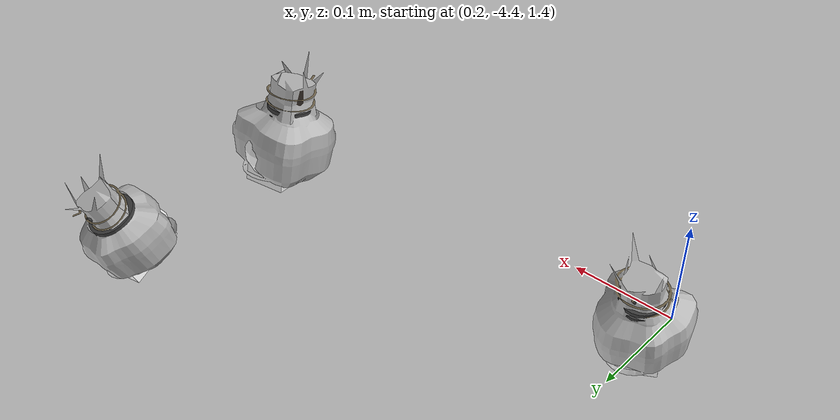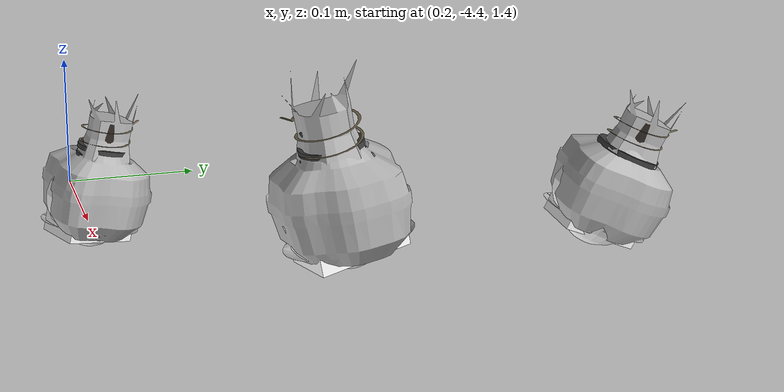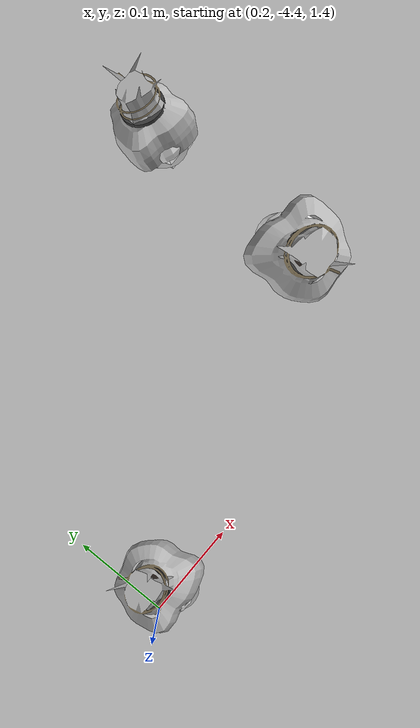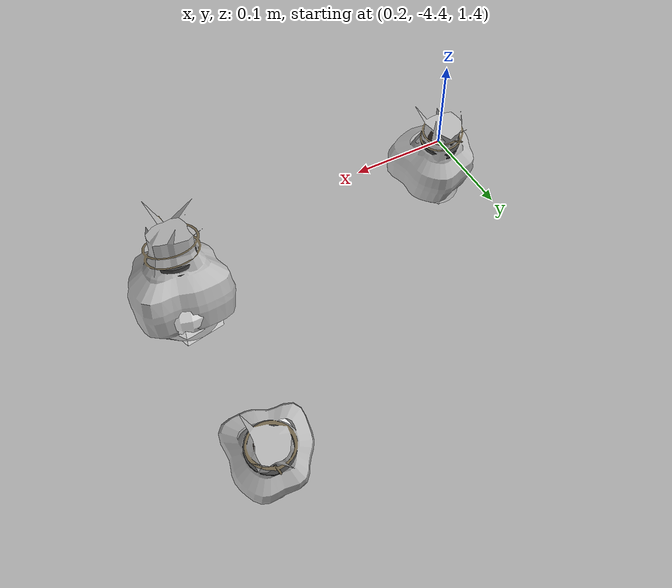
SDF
<sdf version="1.11">
 <world name="peach_orchard">
  <model name="ground">
   <static>true</static>
   <link name="link">
    <visual name="soil">
     <geometry><plane><normal>0 0 1</normal><size>32 22</size></plane></geometry>
     <material>
      <ambient>1 1 1 1</ambient>
      <diffuse>1 1 1 1</diffuse>
      <specular>0.1 0.1 0.1 1</specular>
      <pbr>
       <metal>
        <albedo_map>textures/soil_albedo.png</albedo_map>
        <normal_map type="tangent">textures/soil_normal.png</normal_map>
        <roughness>0.95</roughness>
        <metalness>0</metalness>
       </metal>
      </pbr>
     </material>
    </visual>
    <collision name="c_soil">
     <geometry><plane><normal>0 0 1</normal><size>32 22</size></plane></geometry>
    </collision>
   </link>
  </model>
  <model name="peach_tree_r2_t1_01">
   <pose>0.55 -4.27205 1.45 0 0.185429 -1.70001</pose>
   <static>true</static>
   <link name="bag">
    <visual name="bag_mesh">
     <pose>0 0 0.0479889 0 0 -0</pose>
     <geometry>
      <mesh><uri>model://peach_sim/meshes/bagged_peach.glb</uri><scale>1.06266 1.27754 1.09066</scale></mesh>
     </geometry>
    </visual>
    <visual name="body">
     <pose>0 0 0.0299889 0 0 0</pose>
     <geometry><ellipsoid><radii>0.0398499 0.033216 0.032388</radii></ellipsoid></geometry>
     <material>
      <ambient>1 1 1 1</ambient>
      <diffuse>1 1 1 1</diffuse>
      <specular>0.1 0.1 0.1 1</specular>
      <pbr>
       <metal>
        <albedo_map>textures/paper_bag_albedo.png</albedo_map>
        <normal_map type="tangent">textures/paper_bag_normal.png</normal_map>
        <roughness>0.72</roughness>
        <metalness>0</metalness>
       </metal>
      </pbr>
     </material>
    </visual>
    <visual name="bottom_fold">
     <pose>0 0 0.012 0 0 0.35</pose>
     <geometry><box><size>0.0617673 0.0381984 0.022</size></box></geometry>
     <material>
      <ambient>1 1 1 1</ambient>
      <diffuse>1 1 1 1</diffuse>
      <specular>0.1 0.1 0.1 1</specular>
      <pbr>
       <metal>
        <albedo_map>textures/paper_bag_albedo.png</albedo_map>
        <normal_map type="tangent">textures/paper_bag_normal.png</normal_map>
        <roughness>0.8</roughness>
        <metalness>0</metalness>
       </metal>
      </pbr>
     </material>
    </visual>
    <visual name="fruit">
     <pose>0 0 0.0214186 0 0 0</pose>
     <geometry><sphere><radius>0.0285153</radius></sphere></geometry>
     <material>
      <ambient>1 1 1 1</ambient>
      <diffuse>1 1 1 1</diffuse>
      <specular>0.1 0.1 0.1 1</specular>
      <pbr>
       <metal>
        <albedo_map>textures/fruit_skin_albedo.png</albedo_map>
        <normal_map type="tangent">textures/fruit_skin_normal.png</normal_map>
        <roughness>0.55</roughness>
        <metalness>0</metalness>
       </metal>
      </pbr>
     </material>
    </visual>
    <visual name="neck">
     <pose>0 0 0.0689778 0 0 0</pose>
     <geometry><cylinder><radius>0.013</radius><length>0.018</length></cylinder></geometry>
     <material>
      <ambient>1 1 1 1</ambient>
      <diffuse>1 1 1 1</diffuse>
      <specular>0.1 0.1 0.1 1</specular>
      <pbr>
       <metal>
        <albedo_map>textures/paper_bag_albedo.png</albedo_map>
        <normal_map type="tangent">textures/paper_bag_normal.png</normal_map>
        <roughness>0.75</roughness>
        <metalness>0</metalness>
       </metal>
      </pbr>
     </material>
    </visual>
    <visual name="gather">
     <pose>0 0 0.0499778 0 0 0</pose>
     <geometry><cylinder><radius>0.019</radius><length>0.02</length></cylinder></geometry>
     <material>
      <ambient>1 1 1 1</ambient>
      <diffuse>1 1 1 1</diffuse>
      <specular>0.1 0.1 0.1 1</specular>
      <pbr>
       <metal>
        <albedo_map>textures/paper_bag_albedo.png</albedo_map>
        <normal_map type="tangent">textures/paper_bag_normal.png</normal_map>
        <roughness>0.8</roughness>
        <metalness>0</metalness>
       </metal>
      </pbr>
     </material>
    </visual>
    <visual name="inner_paper">
     <pose>0 0 0.0739778 0 0 0</pose>
     <geometry><cylinder><radius>0.01</radius><length>0.008</length></cylinder></geometry>
     <material>
      <ambient>0.180392 0.14902 0.133333 1</ambient>
      <diffuse>0.180392 0.14902 0.133333 1</diffuse>
      <specular>0.1 0.1 0.1 1</specular>
     </material>
    </visual>
    <visual name="wire_0">
     <pose>0 0 0.0639778 0 0 0</pose>
     <geometry><cylinder><radius>0.0205</radius><length>0.0035</length></cylinder></geometry>
     <material>
      <ambient>0.25 0.25 0.25 1</ambient>
      <diffuse>0.25 0.25 0.25 1</diffuse>
      <specular>0.1 0.1 0.1 1</specular>
     </material>
    </visual>
    <visual name="wire_1">
     <pose>0 0 0.0709778 0 0 0</pose>
     <geometry><cylinder><radius>0.0205</radius><length>0.0035</length></cylinder></geometry>
     <material>
      <ambient>0.25 0.25 0.25 1</ambient>
      <diffuse>0.25 0.25 0.25 1</diffuse>
      <specular>0.1 0.1 0.1 1</specular>
     </material>
    </visual>
    <visual name="wire_tail">
     <pose>0.01 0 0.0719778 0 0.521618 0</pose>
     <geometry><cylinder><radius>0.0012</radius><length>0.026</length></cylinder></geometry>
     <material>
      <ambient>0.25 0.25 0.25 1</ambient>
      <diffuse>0.25 0.25 0.25 1</diffuse>
      <specular>0.1 0.1 0.1 1</specular>
     </material>
    </visual>
    <collision name="c_body">
     <pose>0 0 0.0299889 0 0 0</pose>
     <geometry><cylinder><radius>0.0398499</radius><length>0.0599778</length></cylinder></geometry>
    </collision>
   </link>
  </model>
  <model name="peach_tree_r2_t1_02">
   <pose>0.55 -4.1151 1.45 0 0.426502 1.31658</pose>
   <static>true</static>
   <link name="bag">
    <visual name="bag_mesh">
     <pose>0 0 0.0409548 0 0 0</pose>
     <geometry>
      <mesh><uri>model://peach_sim/meshes/bagged_peach.glb</uri><scale>0.914948 1.02864 0.930791</scale></mesh>
     </geometry>
    </visual>
    <visual name="body">
     <pose>0 0 0.0229548 0 0 0</pose>
     <geometry><ellipsoid><radii>0.0343106 0.0267447 0.0247912</radii></ellipsoid></geometry>
     <material>
      <ambient>1 1 1 1</ambient>
      <diffuse>1 1 1 1</diffuse>
      <specular>0.1 0.1 0.1 1</specular>
      <pbr>
       <metal>
        <albedo_map>textures/paper_bag_albedo.png</albedo_map>
        <normal_map type="tangent">textures/paper_bag_normal.png</normal_map>
        <roughness>0.72</roughness>
        <metalness>0</metalness>
       </metal>
      </pbr>
     </material>
    </visual>
    <visual name="bottom_fold">
     <pose>0 0 0.012 0 0 0.35</pose>
     <geometry><box><size>0.0531814 0.0307564 0.022</size></box></geometry>
     <material>
      <ambient>1 1 1 1</ambient>
      <diffuse>1 1 1 1</diffuse>
      <specular>0.1 0.1 0.1 1</specular>
      <pbr>
       <metal>
        <albedo_map>textures/paper_bag_albedo.png</albedo_map>
        <normal_map type="tangent">textures/paper_bag_normal.png</normal_map>
        <roughness>0.8</roughness>
        <metalness>0</metalness>
       </metal>
      </pbr>
     </material>
    </visual>
    <visual name="fruit">
     <pose>0 0 0.0212166 0 0 0</pose>
     <geometry><sphere><radius>0.0283052</radius></sphere></geometry>
     <material>
      <ambient>1 1 1 1</ambient>
      <diffuse>1 1 1 1</diffuse>
      <specular>0.1 0.1 0.1 1</specular>
      <pbr>
       <metal>
        <albedo_map>textures/fruit_skin_albedo.png</albedo_map>
        <normal_map type="tangent">textures/fruit_skin_normal.png</normal_map>
        <roughness>0.55</roughness>
        <metalness>0</metalness>
       </metal>
      </pbr>
     </material>
    </visual>
    <visual name="neck">
     <pose>0 0 0.0549097 0 0 0</pose>
     <geometry><cylinder><radius>0.013</radius><length>0.018</length></cylinder></geometry>
     <material>
      <ambient>1 1 1 1</ambient>
      <diffuse>1 1 1 1</diffuse>
      <specular>0.1 0.1 0.1 1</specular>
      <pbr>
       <metal>
        <albedo_map>textures/paper_bag_albedo.png</albedo_map>
        <normal_map type="tangent">textures/paper_bag_normal.png</normal_map>
        <roughness>0.75</roughness>
        <metalness>0</metalness>
       </metal>
      </pbr>
     </material>
    </visual>
    <visual name="gather">
     <pose>0 0 0.0359097 0 0 0</pose>
     <geometry><cylinder><radius>0.019</radius><length>0.02</length></cylinder></geometry>
     <material>
      <ambient>1 1 1 1</ambient>
      <diffuse>1 1 1 1</diffuse>
      <specular>0.1 0.1 0.1 1</specular>
      <pbr>
       <metal>
        <albedo_map>textures/paper_bag_albedo.png</albedo_map>
        <normal_map type="tangent">textures/paper_bag_normal.png</normal_map>
        <roughness>0.8</roughness>
        <metalness>0</metalness>
       </metal>
      </pbr>
     </material>
    </visual>
    <visual name="inner_paper">
     <pose>0 0 0.0599097 0 0 0</pose>
     <geometry><cylinder><radius>0.01</radius><length>0.008</length></cylinder></geometry>
     <material>
      <ambient>0.180392 0.14902 0.133333 1</ambient>
      <diffuse>0.180392 0.14902 0.133333 1</diffuse>
      <specular>0.1 0.1 0.1 1</specular>
     </material>
    </visual>
    <visual name="wire_0">
     <pose>0 0 0.0499097 0 0 0</pose>
     <geometry><cylinder><radius>0.0205</radius><length>0.0035</length></cylinder></geometry>
     <material>
      <ambient>0.25 0.25 0.25 1</ambient>
      <diffuse>0.25 0.25 0.25 1</diffuse>
      <specular>0.1 0.1 0.1 1</specular>
     </material>
    </visual>
    <visual name="wire_1">
     <pose>0 0 0.0569097 0 0 0</pose>
     <geometry><cylinder><radius>0.0205</radius><length>0.0035</length></cylinder></geometry>
     <material>
      <ambient>0.25 0.25 0.25 1</ambient>
      <diffuse>0.25 0.25 0.25 1</diffuse>
      <specular>0.1 0.1 0.1 1</specular>
     </material>
    </visual>
    <visual name="wire_tail">
     <pose>0.01 0 0.0579097 0 0.521618 0</pose>
     <geometry><cylinder><radius>0.0012</radius><length>0.026</length></cylinder></geometry>
     <material>
      <ambient>0.25 0.25 0.25 1</ambient>
      <diffuse>0.25 0.25 0.25 1</diffuse>
      <specular>0.1 0.1 0.1 1</specular>
     </material>
    </visual>
    <collision name="c_body">
     <pose>0 0 0.0229548 0 0 0</pose>
     <geometry><cylinder><radius>0.0343106</radius><length>0.0459097</length></cylinder></geometry>
    </collision>
   </link>
  </model>
  <model name="peach_tree_r2_t1_09">
   <pose>0.22 -4.39099 1.35913 0 0.225393 1.68943</pose>
   <static>true</static>
   <link name="bag">
    <visual name="bag_mesh">
     <pose>0 0 0.0494844 0 0 0</pose>
     <geometry>
      <mesh><uri>model://peach_sim/meshes/bagged_peach.glb</uri><scale>1.01492 1.2336 1.12464</scale></mesh>
     </geometry>
    </visual>
    <visual name="body">
     <pose>0 0 0.0314844 0 0 0</pose>
     <geometry><ellipsoid><radii>0.0380596 0.0320735 0.0340031</radii></ellipsoid></geometry>
     <material>
      <ambient>1 1 1 1</ambient>
      <diffuse>1 1 1 1</diffuse>
      <specular>0.1 0.1 0.1 1</specular>
      <pbr>
       <metal>
        <albedo_map>textures/paper_bag_albedo.png</albedo_map>
        <normal_map type="tangent">textures/paper_bag_normal.png</normal_map>
        <roughness>0.72</roughness>
        <metalness>0</metalness>
       </metal>
      </pbr>
     </material>
    </visual>
    <visual name="bottom_fold">
     <pose>0 0 0.012 0 0 0.35</pose>
     <geometry><box><size>0.0589924 0.0368845 0.022</size></box></geometry>
     <material>
      <ambient>1 1 1 1</ambient>
      <diffuse>1 1 1 1</diffuse>
      <specular>0.1 0.1 0.1 1</specular>
      <pbr>
       <metal>
        <albedo_map>textures/paper_bag_albedo.png</albedo_map>
        <normal_map type="tangent">textures/paper_bag_normal.png</normal_map>
        <roughness>0.8</roughness>
        <metalness>0</metalness>
       </metal>
      </pbr>
     </material>
    </visual>
    <visual name="fruit">
     <pose>0 0 0.0172484 0 0 0</pose>
     <geometry><sphere><radius>0.0241783</radius></sphere></geometry>
     <material>
      <ambient>1 1 1 1</ambient>
      <diffuse>1 1 1 1</diffuse>
      <specular>0.1 0.1 0.1 1</specular>
      <pbr>
       <metal>
        <albedo_map>textures/fruit_skin_albedo.png</albedo_map>
        <normal_map type="tangent">textures/fruit_skin_normal.png</normal_map>
        <roughness>0.55</roughness>
        <metalness>0</metalness>
       </metal>
      </pbr>
     </material>
    </visual>
    <visual name="neck">
     <pose>0 0 0.0719688 0 0 0</pose>
     <geometry><cylinder><radius>0.013</radius><length>0.018</length></cylinder></geometry>
     <material>
      <ambient>1 1 1 1</ambient>
      <diffuse>1 1 1 1</diffuse>
      <specular>0.1 0.1 0.1 1</specular>
      <pbr>
       <metal>
        <albedo_map>textures/paper_bag_albedo.png</albedo_map>
        <normal_map type="tangent">textures/paper_bag_normal.png</normal_map>
        <roughness>0.75</roughness>
        <metalness>0</metalness>
       </metal>
      </pbr>
     </material>
    </visual>
    <visual name="gather">
     <pose>0 0 0.0529688 0 0 0</pose>
     <geometry><cylinder><radius>0.019</radius><length>0.02</length></cylinder></geometry>
     <material>
      <ambient>1 1 1 1</ambient>
      <diffuse>1 1 1 1</diffuse>
      <specular>0.1 0.1 0.1 1</specular>
      <pbr>
       <metal>
        <albedo_map>textures/paper_bag_albedo.png</albedo_map>
        <normal_map type="tangent">textures/paper_bag_normal.png</normal_map>
        <roughness>0.8</roughness>
        <metalness>0</metalness>
       </metal>
      </pbr>
     </material>
    </visual>
    <visual name="inner_paper">
     <pose>0 0 0.0769688 0 0 0</pose>
     <geometry><cylinder><radius>0.01</radius><length>0.008</length></cylinder></geometry>
     <material>
      <ambient>0.180392 0.14902 0.133333 1</ambient>
      <diffuse>0.180392 0.14902 0.133333 1</diffuse>
      <specular>0.1 0.1 0.1 1</specular>
     </material>
    </visual>
    <visual name="wire_0">
     <pose>0 0 0.0669688 0 0 0</pose>
     <geometry><cylinder><radius>0.0205</radius><length>0.0035</length></cylinder></geometry>
     <material>
      <ambient>0.25 0.25 0.25 1</ambient>
      <diffuse>0.25 0.25 0.25 1</diffuse>
      <specular>0.1 0.1 0.1 1</specular>
     </material>
    </visual>
    <visual name="wire_1">
     <pose>0 0 0.0739688 0 0 0</pose>
     <geometry><cylinder><radius>0.0205</radius><length>0.0035</length></cylinder></geometry>
     <material>
      <ambient>0.25 0.25 0.25 1</ambient>
      <diffuse>0.25 0.25 0.25 1</diffuse>
      <specular>0.1 0.1 0.1 1</specular>
     </material>
    </visual>
    <visual name="wire_tail">
     <pose>0.01 0 0.0749688 0 0.521618 0</pose>
     <geometry><cylinder><radius>0.0012</radius><length>0.026</length></cylinder></geometry>
     <material>
      <ambient>0.25 0.25 0.25 1</ambient>
      <diffuse>0.25 0.25 0.25 1</diffuse>
      <specular>0.1 0.1 0.1 1</specular>
     </material>
    </visual>
    <collision name="c_body">
     <pose>0 0 0.0314844 0 0 0</pose>
     <geometry><cylinder><radius>0.0380596</radius><length>0.0629688</length></cylinder></geometry>
    </collision>
   </link>
  </model>
 </world>
</sdf>
